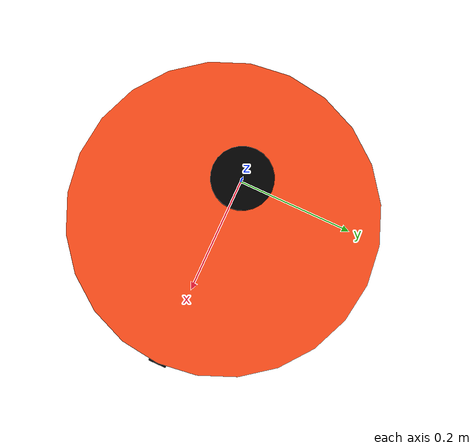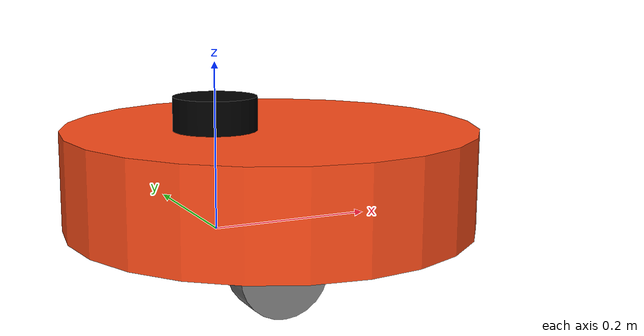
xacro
<?xml version="1.0"?>
<robot xmlns:xacro="http://www.ros.org/wiki/xacro"  name="robot">
    <xacro:include filename="robot_core.xacro" />
    <xacro:include filename="ros2_control.xacro" />
    <xacro:include filename="lidar.xacro" />
    <xacro:include filename="depth_camera.xacro" />
    <xacro:include filename="imu.xacro" />
</robot>

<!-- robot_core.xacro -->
<robot xmlns:xacro="http://www.ros.org/wiki/xacro">
    <xacro:include filename="inertial_macros.xacro"/>

    <!-- Colors -->
    <material name="orange">
        <color rgba="1 0.3 0.1 1"/>
    </material>

    <material name="gray">
        <color rgba="0.5 0.5 0.5 1"/>
    </material>

    <material name="white">
        <color rgba="1 1 1 1"/>
    </material>

    <material name="black">
        <color rgba="0 0 0 1"/>
    </material>

    <!-- Base Link -->
    <link name="base_link">
    </link>

    <!-- Base Footprint Link -->
    <joint name="base_footprint_joint" type="fixed">
        <parent link="base_link"/>
        <child link="base_footprint"/>
        <origin xyz="0 0 0" rpy="0 0 0"/>
    </joint>

    <link name="base_footprint">
    </link>

    <!-- Chassis -->
    <joint name="chassis_joint" type="fixed">
        <parent link="base_link"/>
        <child link="chassis"/>
        <origin xyz="-0.1 0 0"/>
    </joint>

    <link name="chassis">
        <visual>
            <origin xyz="0.17 0 0.06"/>
            <geometry>
                <cylinder radius="0.25" length="0.12"/>
            </geometry>
            <material name="orange"/>
        </visual>
        <collision>
            <origin xyz="0.17 0 0.06"/>
            <geometry>
                <cylinder radius="0.25" length="0.12"/>
            </geometry>
        </collision>
        <xacro:inertial_box mass="0.5" x="0.3" y="0.3" z="0.15">
            <origin xyz="0.15 0 0.075" rpy="0 0 0"/>
        </xacro:inertial_box>
    </link>

    <gazebo reference="chassis">
        <material>Gazebo/Orange</material>
    </gazebo>

    <!-- Left Wheel -->
    <joint name="left_wheel_joint" type="continuous">
        <parent link="base_link"/>
        <child link="left_wheel"/>
        <origin xyz="0 0.175 0" rpy="-${pi/2} 0 0" />
        <axis xyz="0 0 1"/>
    </joint>

    <link name="left_wheel">
        <visual>
            <geometry>
                <cylinder radius="0.05" length="0.04"/>
            </geometry>
            <material name="gray"/>
        </visual>
        <collision>
            <geometry>
                <sphere radius="0.05"/>
            </geometry>
        </collision>
        <xacro:inertial_cylinder mass="0.1" length="0.04" radius="0.05">
            <origin xyz="0 0 0" rpy="0 0 0"/>
        </xacro:inertial_cylinder>
    </link>

    <gazebo reference="left_wheel">
        <material>Gazebo/Gray</material>
    </gazebo>

    <!-- Right Wheel -->
    <joint name="right_wheel_joint" type="continuous">
        <parent link="base_link"/>
        <child link="right_wheel"/>
        <origin xyz="0 -0.175 0" rpy="${pi/2} 0 0" />
        <axis xyz="0 0 -1"/>
    </joint>

    <link name="right_wheel">
        <visual>
            <geometry>
                <cylinder radius="0.05" length="0.04"/>
            </geometry>
            <material name="gray"/>
        </visual>
        <collision>
            <geometry>
                <sphere radius="0.05"/>
            </geometry>
        </collision>
        <xacro:inertial_cylinder mass="0.1" length="0.04" radius="0.05">
            <origin xyz="0 0 0" rpy="0 0 0"/>
        </xacro:inertial_cylinder>
    </link>

    <gazebo reference="right_wheel">
        <material>Gazebo/Gray</material>
    </gazebo>

    <!-- Caster Wheel -->
    <joint name="caster_wheel_joint" type="fixed">
        <parent link="chassis"/>
        <child link="caster_wheel"/>
        <origin xyz="0.3 0 0"/>
    </joint>

    <link name="caster_wheel">
        <visual>
            <geometry>
                <sphere radius="0.05"/>
            </geometry>
            <material name="white"/>
        </visual>
        <collision>
            <geometry>
                <sphere radius="0.05"/>
            </geometry>
        </collision>
        <xacro:inertial_sphere mass="0.1" radius="0.05">
            <origin xyz="0 0 0" rpy="0 0 0"/>
        </xacro:inertial_sphere>
    </link>

    <gazebo reference="caster_wheel">
        <material>Gazebo/White</material>
        <mu1 value="0.001"/>
        <mu2 value="0.001"/>
    </gazebo>
</robot>

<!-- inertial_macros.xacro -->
<robot xmlns:xacro="http://www.ros.org/wiki/xacro">
    <xacro:macro name="inertial_sphere" params="mass radius *origin">
        <inertial>
            <xacro:insert_block name="origin"/>
            <mass value="${mass}" />
            <inertia ixx="${(2/5) * mass * (radius*radius)}" ixy="0.0" ixz="0.0"
                    iyy="${(2/5) * mass * (radius*radius)}" iyz="0.0"
                    izz="${(2/5) * mass * (radius*radius)}" />
        </inertial>
    </xacro:macro>

    <xacro:macro name="inertial_box" params="mass x y z *origin">
        <inertial>
            <xacro:insert_block name="origin"/>
            <mass value="${mass}" />
            <inertia ixx="${(1/12) * mass * (y*y+z*z)}" ixy="0.0" ixz="0.0"
                    iyy="${(1/12) * mass * (x*x+z*z)}" iyz="0.0"
                    izz="${(1/12) * mass * (x*x+y*y)}" />
        </inertial>
    </xacro:macro>

    <xacro:macro name="inertial_cylinder" params="mass length radius *origin">
        <inertial>
            <xacro:insert_block name="origin"/>
            <mass value="${mass}" />
            <inertia ixx="${(1/12) * mass * (3*radius*radius + length*length)}" ixy="0.0" ixz="0.0"
                    iyy="${(1/12) * mass * (3*radius*radius + length*length)}" iyz="0.0"
                    izz="${(1/2) * mass * (radius*radius)}" />
        </inertial>
    </xacro:macro>
</robot>

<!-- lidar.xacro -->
<robot xmlns:xacro="http://www.ros.org/wiki/xacro">
    <joint name="laser_joint" type="fixed">
        <parent link="chassis"/>
        <child link="laser_frame"/>
        <origin xyz="0.1 0 0.14" rpy="0 0 0"/>
    </joint>

    <link name="laser_frame">
        <visual>
            <geometry>
                <cylinder radius="0.05" length="0.04"/>
            </geometry>
            <material name="black"/>
        </visual>
        <collision>
            <geometry>
                <cylinder radius="0.05" length="0.04"/>
            </geometry>
        </collision>
        <xacro:inertial_cylinder mass="0.1" length="0.04" radius="0.05">
            <origin xyz="0 0 0" rpy="0 0 0"/>
        </xacro:inertial_cylinder>
    </link>

    <gazebo reference="laser_frame">
        <material>Gazebo/Black</material>

        <sensor name="laser" type="ray">
            <pose> 0 0 0 0 0 0 </pose>
            <update_rate>10</update_rate>
            <ray>
                <scan>
                    <horizontal>
                        <samples>360</samples>
                        <min_angle>-3.14</min_angle>
                        <max_angle>3.14</max_angle>
                    </horizontal>
                </scan>
                <range>
                    <min>0.3</min>
                    <max>12</max>
                </range>
            </ray>
            <plugin name="laser_controller" filename="libgazebo_ros_ray_sensor.so">
                <ros>
                    <argument>~/out:=scan</argument>
                </ros>
                <output_type>sensor_msgs/LaserScan</output_type>
                <frame_name>laser_frame</frame_name>
            </plugin>
        </sensor>
    </gazebo>
</robot>

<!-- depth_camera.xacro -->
<robot xmlns:xacro="http://www.ros.org/wiki/xacro">
    <joint name="camera_joint" type="fixed">
        <parent link="chassis"/>
        <child link="camera_link"/>
        <origin xyz="0.42 0 0.08" rpy="0 0 0"/>
    </joint>

    <link name="camera_link">
        <visual>
            <geometry>
                <box size="0.010 0.03 0.03"/>
            </geometry>
            <material name="black"/>
        </visual>
    </link>

    <joint name="camera_optical_joint" type="fixed">
        <parent link="camera_link"/>
        <child link="camera_link_optical"/>
        <origin xyz="0 0 0" rpy="${-pi/2} 0 ${-pi/2}"/>
    </joint>

    <link name="camera_link_optical"></link>

    <gazebo reference="camera_link">
        <material>Gazebo/Black</material>

        <sensor name="camera" type="depth">
            <pose> 0 0 0 0 0 0 </pose>
            <visualize>true</visualize>
            <update_rate>10</update_rate>
            <camera>
                <horizontal_fov>1.089</horizontal_fov>
                <image>
                    <format>B8G8R8</format>
                    <width>640</width>
                    <height>480</height>
                </image>
                <clip>
                    <near>0.42</near>
                    <far>15.0</far>
                </clip>
            </camera>
            <plugin name="camera_controller" filename="libgazebo_ros_camera.so">
                <frame_name>camera_link_optical</frame_name>
                <min_depth>0.1</min_depth>
                <max_depth>100.0</max_depth>
            </plugin>
        </sensor>
    </gazebo>
</robot>

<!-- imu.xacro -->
<robot xmlns:xacro="http://www.ros.org/wiki/xacro">
    <joint name="imu_joint" type="fixed">
        <parent link="chassis"/>
        <child link="imu_link"/>
        <origin xyz="0 0 0" rpy="0 0 0"/>
    </joint>

    <link name="imu_link">
    </link>

    <gazebo reference="imu_link">
    <sensor name="imu_sensor" type="imu">
    <plugin filename="libgazebo_ros_imu_sensor.so" name="imu_plugin">
        <ros>
            <namespace>/imu</namespace>
            <remapping>~/out:=data</remapping>
        </ros>
        <initial_orientation_as_reference>false</initial_orientation_as_reference>
        </plugin>
        <always_on>true</always_on>
        <update_rate>100</update_rate>
        <visualize>true</visualize>
        <imu>
        <angular_velocity>
            <x>
            <noise type="gaussian">
                <mean>0.0</mean>
                <stddev>2e-4</stddev>
                <bias_mean>0.0000075</bias_mean>
                <bias_stddev>0.0000008</bias_stddev>
            </noise>
            </x>
            <y>
            <noise type="gaussian">
                <mean>0.0</mean>
                <stddev>2e-4</stddev>
                <bias_mean>0.0000075</bias_mean>
                <bias_stddev>0.0000008</bias_stddev>
            </noise>
            </y>
            <z>
            <noise type="gaussian">
                <mean>0.0</mean>
                <stddev>2e-4</stddev>
                <bias_mean>0.0000075</bias_mean>
                <bias_stddev>0.0000008</bias_stddev>
            </noise>
            </z>
        </angular_velocity>
        <linear_acceleration>
            <x>
            <noise type="gaussian">
                <mean>0.0</mean>
                <stddev>1.7e-2</stddev>
                <bias_mean>0.1</bias_mean>
                <bias_stddev>0.001</bias_stddev>
            </noise>
            </x>
            <y>
            <noise type="gaussian">
                <mean>0.0</mean>
                <stddev>1.7e-2</stddev>
                <bias_mean>0.1</bias_mean>
                <bias_stddev>0.001</bias_stddev>
            </noise>
            </y>
            <z>
            <noise type="gaussian">
                <mean>0.0</mean>
                <stddev>1.7e-2</stddev>
                <bias_mean>0.1</bias_mean>
                <bias_stddev>0.001</bias_stddev>
            </noise>
            </z>
        </linear_acceleration>
        </imu>
    </sensor>
    </gazebo>
</robot>
